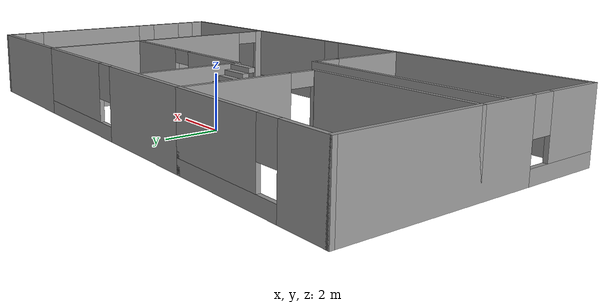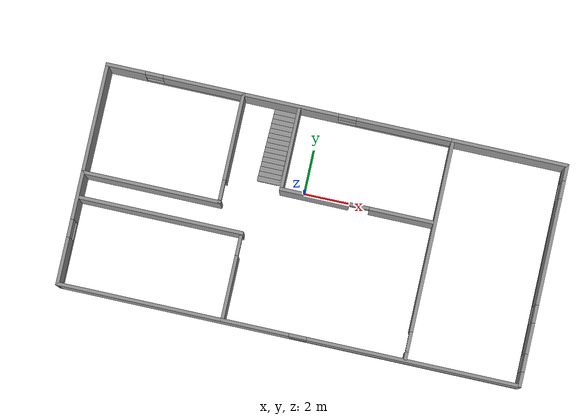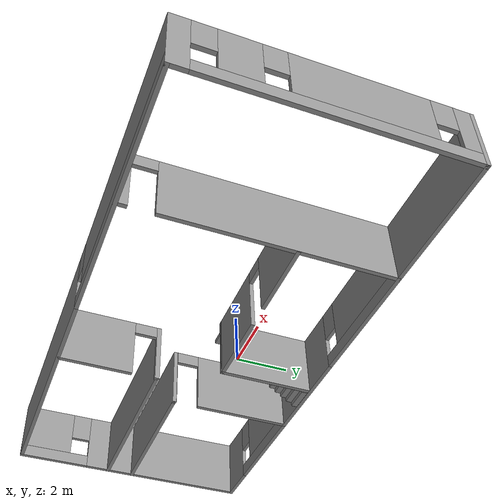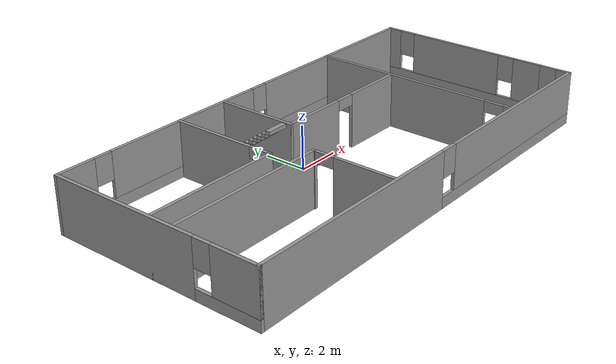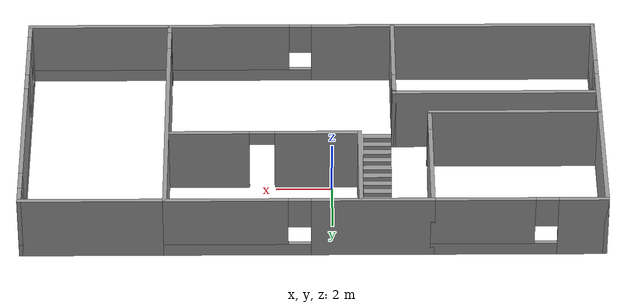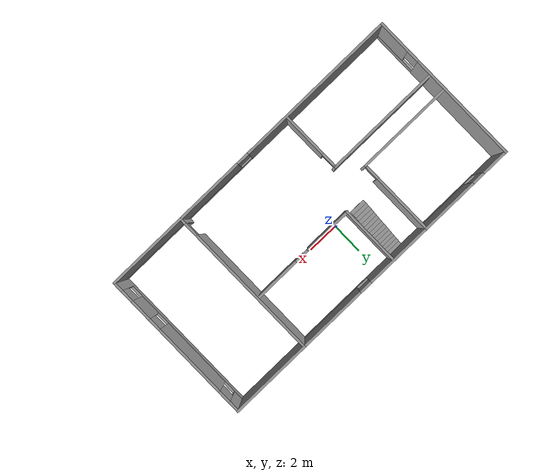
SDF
<?xml version='1.0'?>
<sdf version='1.6'>
  <model name='fourRooms'>
    <pose frame=''>0.699213 -1.42186 0 0 -0 0</pose>
    <link name='Stairs_0'>
      <visual name='Stairs_0_Visual_0'>
        <pose frame=''>-2.29334 4.72292 0.083333 0 -0 0</pose>
        <geometry>
          <box>
            <size>1 0.233333 0.166667</size>
          </box>
        </geometry>
        <material>
          <script>
            <uri>file://media/materials/scripts/gazebo.material</uri>
            <name>Gazebo/Grey</name>
          </script>
          <ambient>1 1 1 1</ambient>
        </material>
        <meta>
          <layer>0</layer>
        </meta>
      </visual>
      <collision name='Stairs_0_Collision_0'>
        <geometry>
          <box>
            <size>1 0.233333 0.166667</size>
          </box>
        </geometry>
        <pose frame=''>-2.29334 4.72292 0.083333 0 -0 0</pose>
      </collision>
      <visual name='Stairs_0_Visual_1'>
        <pose frame=''>-2.29334 4.48959 0.25 0 -0 0</pose>
        <geometry>
          <box>
            <size>1 0.233333 0.166667</size>
          </box>
        </geometry>
        <material>
          <script>
            <uri>file://media/materials/scripts/gazebo.material</uri>
            <name>Gazebo/Grey</name>
          </script>
          <ambient>1 1 1 1</ambient>
        </material>
        <meta>
          <layer>0</layer>
        </meta>
      </visual>
      <collision name='Stairs_0_Collision_1'>
        <geometry>
          <box>
            <size>1 0.233333 0.166667</size>
          </box>
        </geometry>
        <pose frame=''>-2.29334 4.48959 0.25 0 -0 0</pose>
      </collision>
      <visual name='Stairs_0_Visual_2'>
        <pose frame=''>-2.29334 4.25625 0.416667 0 -0 0</pose>
        <geometry>
          <box>
            <size>1 0.233333 0.166667</size>
          </box>
        </geometry>
        <material>
          <script>
            <uri>file://media/materials/scripts/gazebo.material</uri>
            <name>Gazebo/Grey</name>
          </script>
          <ambient>1 1 1 1</ambient>
        </material>
        <meta>
          <layer>0</layer>
        </meta>
      </visual>
      <collision name='Stairs_0_Collision_2'>
        <geometry>
          <box>
            <size>1 0.233333 0.166667</size>
          </box>
        </geometry>
        <pose frame=''>-2.29334 4.25625 0.416667 0 -0 0</pose>
      </collision>
      <visual name='Stairs_0_Visual_3'>
        <pose frame=''>-2.29334 4.02292 0.583333 0 -0 0</pose>
        <geometry>
          <box>
            <size>1 0.233333 0.166667</size>
          </box>
        </geometry>
        <material>
          <script>
            <uri>file://media/materials/scripts/gazebo.material</uri>
            <name>Gazebo/Grey</name>
          </script>
          <ambient>1 1 1 1</ambient>
        </material>
        <meta>
          <layer>0</layer>
        </meta>
      </visual>
      <collision name='Stairs_0_Collision_3'>
        <geometry>
          <box>
            <size>1 0.233333 0.166667</size>
          </box>
        </geometry>
        <pose frame=''>-2.29334 4.02292 0.583333 0 -0 0</pose>
      </collision>
      <visual name='Stairs_0_Visual_4'>
        <pose frame=''>-2.29334 3.78959 0.75 0 -0 0</pose>
        <geometry>
          <box>
            <size>1 0.233333 0.166667</size>
          </box>
        </geometry>
        <material>
          <script>
            <uri>file://media/materials/scripts/gazebo.material</uri>
            <name>Gazebo/Grey</name>
          </script>
          <ambient>1 1 1 1</ambient>
        </material>
        <meta>
          <layer>0</layer>
        </meta>
      </visual>
      <collision name='Stairs_0_Collision_4'>
        <geometry>
          <box>
            <size>1 0.233333 0.166667</size>
          </box>
        </geometry>
        <pose frame=''>-2.29334 3.78959 0.75 0 -0 0</pose>
      </collision>
      <visual name='Stairs_0_Visual_5'>
        <pose frame=''>-2.29334 3.55625 0.916667 0 -0 0</pose>
        <geometry>
          <box>
            <size>1 0.233333 0.166667</size>
          </box>
        </geometry>
        <material>
          <script>
            <uri>file://media/materials/scripts/gazebo.material</uri>
            <name>Gazebo/Grey</name>
          </script>
          <ambient>1 1 1 1</ambient>
        </material>
        <meta>
          <layer>0</layer>
        </meta>
      </visual>
      <collision name='Stairs_0_Collision_5'>
        <geometry>
          <box>
            <size>1 0.233333 0.166667</size>
          </box>
        </geometry>
        <pose frame=''>-2.29334 3.55625 0.916667 0 -0 0</pose>
      </collision>
      <visual name='Stairs_0_Visual_6'>
        <pose frame=''>-2.29334 3.32292 1.08333 0 -0 0</pose>
        <geometry>
          <box>
            <size>1 0.233333 0.166667</size>
          </box>
        </geometry>
        <material>
          <script>
            <uri>file://media/materials/scripts/gazebo.material</uri>
            <name>Gazebo/Grey</name>
          </script>
          <ambient>1 1 1 1</ambient>
        </material>
        <meta>
          <layer>0</layer>
        </meta>
      </visual>
      <collision name='Stairs_0_Collision_6'>
        <geometry>
          <box>
            <size>1 0.233333 0.166667</size>
          </box>
        </geometry>
        <pose frame=''>-2.29334 3.32292 1.08333 0 -0 0</pose>
      </collision>
      <visual name='Stairs_0_Visual_7'>
        <pose frame=''>-2.29334 3.08959 1.25 0 -0 0</pose>
        <geometry>
          <box>
            <size>1 0.233333 0.166667</size>
          </box>
        </geometry>
        <material>
          <script>
            <uri>file://media/materials/scripts/gazebo.material</uri>
            <name>Gazebo/Grey</name>
          </script>
          <ambient>1 1 1 1</ambient>
        </material>
        <meta>
          <layer>0</layer>
        </meta>
      </visual>
      <collision name='Stairs_0_Collision_7'>
        <geometry>
          <box>
            <size>1 0.233333 0.166667</size>
          </box>
        </geometry>
        <pose frame=''>-2.29334 3.08959 1.25 0 -0 0</pose>
      </collision>
      <visual name='Stairs_0_Visual_8'>
        <pose frame=''>-2.29334 2.85625 1.41667 0 -0 0</pose>
        <geometry>
          <box>
            <size>1 0.233333 0.166667</size>
          </box>
        </geometry>
        <material>
          <script>
            <uri>file://media/materials/scripts/gazebo.material</uri>
            <name>Gazebo/Grey</name>
          </script>
          <ambient>1 1 1 1</ambient>
        </material>
        <meta>
          <layer>0</layer>
        </meta>
      </visual>
      <collision name='Stairs_0_Collision_8'>
        <geometry>
          <box>
            <size>1 0.233333 0.166667</size>
          </box>
        </geometry>
        <pose frame=''>-2.29334 2.85625 1.41667 0 -0 0</pose>
      </collision>
      <visual name='Stairs_0_Visual_9'>
        <pose frame=''>-2.29334 2.62292 1.58333 0 -0 0</pose>
        <geometry>
          <box>
            <size>1 0.233333 0.166667</size>
          </box>
        </geometry>
        <material>
          <script>
            <uri>file://media/materials/scripts/gazebo.material</uri>
            <name>Gazebo/Grey</name>
          </script>
          <ambient>1 1 1 1</ambient>
        </material>
        <meta>
          <layer>0</layer>
        </meta>
      </visual>
      <collision name='Stairs_0_Collision_9'>
        <geometry>
          <box>
            <size>1 0.233333 0.166667</size>
          </box>
        </geometry>
        <pose frame=''>-2.29334 2.62292 1.58333 0 -0 0</pose>
      </collision>
      <visual name='Stairs_0_Visual_10'>
        <pose frame=''>-2.29334 2.38959 1.75 0 -0 0</pose>
        <geometry>
          <box>
            <size>1 0.233333 0.166667</size>
          </box>
        </geometry>
        <material>
          <script>
            <uri>file://media/materials/scripts/gazebo.material</uri>
            <name>Gazebo/Grey</name>
          </script>
          <ambient>1 1 1 1</ambient>
        </material>
        <meta>
          <layer>0</layer>
        </meta>
      </visual>
      <collision name='Stairs_0_Collision_10'>
        <geometry>
          <box>
            <size>1 0.233333 0.166667</size>
          </box>
        </geometry>
        <pose frame=''>-2.29334 2.38959 1.75 0 -0 0</pose>
      </collision>
      <visual name='Stairs_0_Visual_11'>
        <pose frame=''>-2.29334 2.15625 1.91667 0 -0 0</pose>
        <geometry>
          <box>
            <size>1 0.233333 0.166667</size>
          </box>
        </geometry>
        <material>
          <script>
            <uri>file://media/materials/scripts/gazebo.material</uri>
            <name>Gazebo/Grey</name>
          </script>
          <ambient>1 1 1 1</ambient>
        </material>
        <meta>
          <layer>0</layer>
        </meta>
      </visual>
      <collision name='Stairs_0_Collision_11'>
        <geometry>
          <box>
            <size>1 0.233333 0.166667</size>
          </box>
        </geometry>
        <pose frame=''>-2.29334 2.15625 1.91667 0 -0 0</pose>
      </collision>
      <visual name='Stairs_0_Visual_12'>
        <pose frame=''>-2.29334 1.92292 2.08333 0 -0 0</pose>
        <geometry>
          <box>
            <size>1 0.233333 0.166667</size>
          </box>
        </geometry>
        <material>
          <script>
            <uri>file://media/materials/scripts/gazebo.material</uri>
            <name>Gazebo/Grey</name>
          </script>
          <ambient>1 1 1 1</ambient>
        </material>
        <meta>
          <layer>0</layer>
        </meta>
      </visual>
      <collision name='Stairs_0_Collision_12'>
        <geometry>
          <box>
            <size>1 0.233333 0.166667</size>
          </box>
        </geometry>
        <pose frame=''>-2.29334 1.92292 2.08333 0 -0 0</pose>
      </collision>
      <visual name='Stairs_0_Visual_13'>
        <pose frame=''>-2.29334 1.68959 2.25 0 -0 0</pose>
        <geometry>
          <box>
            <size>1 0.233333 0.166667</size>
          </box>
        </geometry>
        <material>
          <script>
            <uri>file://media/materials/scripts/gazebo.material</uri>
            <name>Gazebo/Grey</name>
          </script>
          <ambient>1 1 1 1</ambient>
        </material>
        <meta>
          <layer>0</layer>
        </meta>
      </visual>
      <collision name='Stairs_0_Collision_13'>
        <geometry>
          <box>
            <size>1 0.233333 0.166667</size>
          </box>
        </geometry>
        <pose frame=''>-2.29334 1.68959 2.25 0 -0 0</pose>
      </collision>
      <visual name='Stairs_0_Visual_14'>
        <pose frame=''>-2.29334 1.45625 2.41667 0 -0 0</pose>
        <geometry>
          <box>
            <size>1 0.233333 0.166667</size>
          </box>
        </geometry>
        <material>
          <script>
            <uri>file://media/materials/scripts/gazebo.material</uri>
            <name>Gazebo/Grey</name>
          </script>
          <ambient>1 1 1 1</ambient>
        </material>
        <meta>
          <layer>0</layer>
        </meta>
      </visual>
      <collision name='Stairs_0_Collision_14'>
        <geometry>
          <box>
            <size>1 0.233333 0.166667</size>
          </box>
        </geometry>
        <pose frame=''>-2.29334 1.45625 2.41667 0 -0 0</pose>
      </collision>
    </link>
    <link name='Wall_20'>
      <pose frame=''>-10.3 -0 0 0 -0 -1.5708</pose>
      <visual name='Wall_20_Visual_0'>
        <pose frame=''>-1.47837 0 1.25 0 -0 0</pose>
        <geometry>
          <box>
            <size>7.04326 0.15 2.5</size>
          </box>
        </geometry>
        <material>
          <script>
            <uri>file://media/materials/scripts/gazebo.material</uri>
            <name>Gazebo/Grey</name>
          </script>
          <ambient>1 1 1 1</ambient>
        </material>
        <meta>
          <layer>0</layer>
        </meta>
      </visual>
      <collision name='Wall_20_Collision_0'>
        <geometry>
          <box>
            <size>7.04326 0.15 2.5</size>
          </box>
        </geometry>
        <pose frame=''>-1.47837 0 1.25 0 -0 0</pose>
      </collision>
      <visual name='Wall_20_Visual_1'>
        <pose frame=''>3.52163 0 0.25 0 -0 0</pose>
        <geometry>
          <box>
            <size>2.95675 0.15 0.5</size>
          </box>
        </geometry>
        <material>
          <script>
            <uri>file://media/materials/scripts/gazebo.material</uri>
            <name>Gazebo/Grey</name>
          </script>
          <ambient>1 1 1 1</ambient>
        </material>
        <meta>
          <layer>0</layer>
        </meta>
      </visual>
      <collision name='Wall_20_Collision_1'>
        <geometry>
          <box>
            <size>2.95675 0.15 0.5</size>
          </box>
        </geometry>
        <pose frame=''>3.52163 0 0.25 0 -0 0</pose>
      </collision>
      <visual name='Wall_20_Visual_2'>
        <pose frame=''>3.92163 0 1.5 0 -0 0</pose>
        <geometry>
          <box>
            <size>2.15674 0.15 2</size>
          </box>
        </geometry>
        <material>
          <script>
            <uri>file://media/materials/scripts/gazebo.material</uri>
            <name>Gazebo/Grey</name>
          </script>
          <ambient>1 1 1 1</ambient>
        </material>
        <meta>
          <layer>0</layer>
        </meta>
      </visual>
      <collision name='Wall_20_Collision_2'>
        <geometry>
          <box>
            <size>2.15674 0.15 2</size>
          </box>
        </geometry>
        <pose frame=''>3.92163 0 1.5 0 -0 0</pose>
      </collision>
      <visual name='Wall_20_Visual_3'>
        <pose frame=''>2.44326 0 1.9 0 -0 0</pose>
        <geometry>
          <box>
            <size>0.8 0.15 1.2</size>
          </box>
        </geometry>
        <material>
          <script>
            <uri>file://media/materials/scripts/gazebo.material</uri>
            <name>Gazebo/Grey</name>
          </script>
          <ambient>1 1 1 1</ambient>
        </material>
        <meta>
          <layer>0</layer>
        </meta>
      </visual>
      <collision name='Wall_20_Collision_3'>
        <geometry>
          <box>
            <size>0.8 0.15 1.2</size>
          </box>
        </geometry>
        <pose frame=''>2.44326 0 1.9 0 -0 0</pose>
      </collision>
    </link>
    <link name='Wall_21'>
      <pose frame=''>0 -4.925 0 0 -0 0</pose>
      <visual name='Wall_21_Visual_0'>
        <pose frame=''>-5.17756 0 1.25 0 -0 0</pose>
        <geometry>
          <box>
            <size>10.3949 0.15 2.5</size>
          </box>
        </geometry>
        <material>
          <script>
            <uri>file://media/materials/scripts/gazebo.material</uri>
            <name>Gazebo/Grey</name>
          </script>
          <ambient>1 1 1 1</ambient>
        </material>
        <meta>
          <layer>0</layer>
        </meta>
      </visual>
      <collision name='Wall_21_Collision_0'>
        <geometry>
          <box>
            <size>10.3949 0.15 2.5</size>
          </box>
        </geometry>
        <pose frame=''>-5.17756 0 1.25 0 -0 0</pose>
      </collision>
      <visual name='Wall_21_Visual_1'>
        <pose frame=''>5.19744 0 0.25 0 -0 0</pose>
        <geometry>
          <box>
            <size>10.3551 0.15 0.5</size>
          </box>
        </geometry>
        <material>
          <script>
            <uri>file://media/materials/scripts/gazebo.material</uri>
            <name>Gazebo/Grey</name>
          </script>
          <ambient>1 1 1 1</ambient>
        </material>
        <meta>
          <layer>0</layer>
        </meta>
      </visual>
      <collision name='Wall_21_Collision_1'>
        <geometry>
          <box>
            <size>10.3551 0.15 0.5</size>
          </box>
        </geometry>
        <pose frame=''>5.19744 0 0.25 0 -0 0</pose>
      </collision>
      <visual name='Wall_21_Visual_2'>
        <pose frame=''>5.59744 0 1.5 0 -0 0</pose>
        <geometry>
          <box>
            <size>9.55512 0.15 2</size>
          </box>
        </geometry>
        <material>
          <script>
            <uri>file://media/materials/scripts/gazebo.material</uri>
            <name>Gazebo/Grey</name>
          </script>
          <ambient>1 1 1 1</ambient>
        </material>
        <meta>
          <layer>0</layer>
        </meta>
      </visual>
      <collision name='Wall_21_Collision_2'>
        <geometry>
          <box>
            <size>9.55512 0.15 2</size>
          </box>
        </geometry>
        <pose frame=''>5.59744 0 1.5 0 -0 0</pose>
      </collision>
      <visual name='Wall_21_Visual_3'>
        <pose frame=''>0.41988 0 1.9 0 -0 0</pose>
        <geometry>
          <box>
            <size>0.8 0.15 1.2</size>
          </box>
        </geometry>
        <material>
          <script>
            <uri>file://media/materials/scripts/gazebo.material</uri>
            <name>Gazebo/Grey</name>
          </script>
          <ambient>1 1 1 1</ambient>
        </material>
        <meta>
          <layer>0</layer>
        </meta>
      </visual>
      <collision name='Wall_21_Collision_3'>
        <geometry>
          <box>
            <size>0.8 0.15 1.2</size>
          </box>
        </geometry>
        <pose frame=''>0.41988 0 1.9 0 -0 0</pose>
      </collision>
    </link>
    <link name='Wall_22'>
      <pose frame=''>10.3 -0 0 0 -0 1.5708</pose>
      <visual name='Wall_22_Visual_0'>
        <pose frame=''>-4.65313 0 1.25 0 -0 0</pose>
        <geometry>
          <box>
            <size>0.693734 0.15 2.5</size>
          </box>
        </geometry>
        <material>
          <script>
            <uri>file://media/materials/scripts/gazebo.material</uri>
            <name>Gazebo/Grey</name>
          </script>
          <ambient>1 1 1 1</ambient>
        </material>
        <meta>
          <layer>0</layer>
        </meta>
      </visual>
      <collision name='Wall_22_Collision_0'>
        <geometry>
          <box>
            <size>0.693734 0.15 2.5</size>
          </box>
        </geometry>
        <pose frame=''>-4.65313 0 1.25 0 -0 0</pose>
      </collision>
      <visual name='Wall_22_Visual_1'>
        <pose frame=''>0.346867 0 0.25 0 -0 0</pose>
        <geometry>
          <box>
            <size>9.30627 0.15 0.5</size>
          </box>
        </geometry>
        <material>
          <script>
            <uri>file://media/materials/scripts/gazebo.material</uri>
            <name>Gazebo/Grey</name>
          </script>
          <ambient>1 1 1 1</ambient>
        </material>
        <meta>
          <layer>0</layer>
        </meta>
      </visual>
      <collision name='Wall_22_Collision_1'>
        <geometry>
          <box>
            <size>9.30627 0.15 0.5</size>
          </box>
        </geometry>
        <pose frame=''>0.346867 0 0.25 0 -0 0</pose>
      </collision>
      <visual name='Wall_22_Visual_2'>
        <pose frame=''>-2.81566 0 1.5 0 -0 0</pose>
        <geometry>
          <box>
            <size>1.38122 0.15 2</size>
          </box>
        </geometry>
        <material>
          <script>
            <uri>file://media/materials/scripts/gazebo.material</uri>
            <name>Gazebo/Grey</name>
          </script>
          <ambient>1 1 1 1</ambient>
        </material>
        <meta>
          <layer>0</layer>
        </meta>
      </visual>
      <collision name='Wall_22_Collision_2'>
        <geometry>
          <box>
            <size>1.38122 0.15 2</size>
          </box>
        </geometry>
        <pose frame=''>-2.81566 0 1.5 0 -0 0</pose>
      </collision>
      <visual name='Wall_22_Visual_3'>
        <pose frame=''>1.05467 0 1.5 0 -0 0</pose>
        <geometry>
          <box>
            <size>4.75944 0.15 2</size>
          </box>
        </geometry>
        <material>
          <script>
            <uri>file://media/materials/scripts/gazebo.material</uri>
            <name>Gazebo/Grey</name>
          </script>
          <ambient>1 1 1 1</ambient>
        </material>
        <meta>
          <layer>0</layer>
        </meta>
      </visual>
      <collision name='Wall_22_Collision_3'>
        <geometry>
          <box>
            <size>4.75944 0.15 2</size>
          </box>
        </geometry>
        <pose frame=''>1.05467 0 1.5 0 -0 0</pose>
      </collision>
      <visual name='Wall_22_Visual_4'>
        <pose frame=''>4.6172 0 1.5 0 -0 0</pose>
        <geometry>
          <box>
            <size>0.765608 0.15 2</size>
          </box>
        </geometry>
        <material>
          <script>
            <uri>file://media/materials/scripts/gazebo.material</uri>
            <name>Gazebo/Grey</name>
          </script>
          <ambient>1 1 1 1</ambient>
        </material>
        <meta>
          <layer>0</layer>
        </meta>
      </visual>
      <collision name='Wall_22_Collision_4'>
        <geometry>
          <box>
            <size>0.765608 0.15 2</size>
          </box>
        </geometry>
        <pose frame=''>4.6172 0 1.5 0 -0 0</pose>
      </collision>
      <visual name='Wall_22_Visual_5'>
        <pose frame=''>-3.90627 0 1.9 0 -0 0</pose>
        <geometry>
          <box>
            <size>0.8 0.15 1.2</size>
          </box>
        </geometry>
        <material>
          <script>
            <uri>file://media/materials/scripts/gazebo.material</uri>
            <name>Gazebo/Grey</name>
          </script>
          <ambient>1 1 1 1</ambient>
        </material>
        <meta>
          <layer>0</layer>
        </meta>
      </visual>
      <collision name='Wall_22_Collision_5'>
        <geometry>
          <box>
            <size>0.8 0.15 1.2</size>
          </box>
        </geometry>
        <pose frame=''>-3.90627 0 1.9 0 -0 0</pose>
      </collision>
      <visual name='Wall_22_Visual_6'>
        <pose frame=''>-1.72505 0 1.9 0 -0 0</pose>
        <geometry>
          <box>
            <size>0.8 0.15 1.2</size>
          </box>
        </geometry>
        <material>
          <script>
            <uri>file://media/materials/scripts/gazebo.material</uri>
            <name>Gazebo/Grey</name>
          </script>
          <ambient>1 1 1 1</ambient>
        </material>
        <meta>
          <layer>0</layer>
        </meta>
      </visual>
      <collision name='Wall_22_Collision_6'>
        <geometry>
          <box>
            <size>0.8 0.15 1.2</size>
          </box>
        </geometry>
        <pose frame=''>-1.72505 0 1.9 0 -0 0</pose>
      </collision>
      <visual name='Wall_22_Visual_7'>
        <pose frame=''>3.83439 0 1.9 0 -0 0</pose>
        <geometry>
          <box>
            <size>0.8 0.15 1.2</size>
          </box>
        </geometry>
        <material>
          <script>
            <uri>file://media/materials/scripts/gazebo.material</uri>
            <name>Gazebo/Grey</name>
          </script>
          <ambient>1 1 1 1</ambient>
        </material>
        <meta>
          <layer>0</layer>
        </meta>
      </visual>
      <collision name='Wall_22_Collision_7'>
        <geometry>
          <box>
            <size>0.8 0.15 1.2</size>
          </box>
        </geometry>
        <pose frame=''>3.83439 0 1.9 0 -0 0</pose>
      </collision>
    </link>
    <link name='Wall_23'>
      <collision name='Wall_23_Collision'>
        <geometry>
          <box>
            <size>5.25 0.15 2.5</size>
          </box>
        </geometry>
        <pose frame=''>0 0 1.25 0 -0 0</pose>
      </collision>
      <visual name='Wall_23_Visual'>
        <pose frame=''>0 0 1.25 0 -0 0</pose>
        <geometry>
          <box>
            <size>5.25 0.15 2.5</size>
          </box>
        </geometry>
        <material>
          <script>
            <uri>file://media/materials/scripts/gazebo.material</uri>
            <name>Gazebo/Grey</name>
          </script>
          <ambient>1 1 1 1</ambient>
        </material>
        <meta>
          <layer>0</layer>
        </meta>
      </visual>
      <pose frame=''>7.75 4.925 0 0 -0 3.14159</pose>
    </link>
    <link name='Wall_24'>
      <pose frame=''>5.2 -0 0 0 -0 -1.5708</pose>
      <visual name='Wall_24_Visual_0'>
        <pose frame=''>-0.678766 0 1.25 0 -0 0</pose>
        <geometry>
          <box>
            <size>8.64247 0.15 2.5</size>
          </box>
        </geometry>
        <material>
          <script>
            <uri>file://media/materials/scripts/gazebo.material</uri>
            <name>Gazebo/Grey</name>
          </script>
          <ambient>1 1 1 1</ambient>
        </material>
        <meta>
          <layer>0</layer>
        </meta>
      </visual>
      <collision name='Wall_24_Collision_0'>
        <geometry>
          <box>
            <size>8.64247 0.15 2.5</size>
          </box>
        </geometry>
        <pose frame=''>-0.678766 0 1.25 0 -0 0</pose>
      </collision>
      <visual name='Wall_24_Visual_1'>
        <pose frame=''>4.77123 0 1.25 0 -0 0</pose>
        <geometry>
          <box>
            <size>0.457533 0.15 2.5</size>
          </box>
        </geometry>
        <material>
          <script>
            <uri>file://media/materials/scripts/gazebo.material</uri>
            <name>Gazebo/Grey</name>
          </script>
          <ambient>1 1 1 1</ambient>
        </material>
        <meta>
          <layer>0</layer>
        </meta>
      </visual>
      <collision name='Wall_24_Collision_1'>
        <geometry>
          <box>
            <size>0.457533 0.15 2.5</size>
          </box>
        </geometry>
        <pose frame=''>4.77123 0 1.25 0 -0 0</pose>
      </collision>
      <visual name='Wall_24_Visual_2'>
        <pose frame=''>4.09247 0 2.25 0 -0 0</pose>
        <geometry>
          <box>
            <size>0.9 0.15 0.5</size>
          </box>
        </geometry>
        <material>
          <script>
            <uri>file://media/materials/scripts/gazebo.material</uri>
            <name>Gazebo/Grey</name>
          </script>
          <ambient>1 1 1 1</ambient>
        </material>
        <meta>
          <layer>0</layer>
        </meta>
      </visual>
      <collision name='Wall_24_Collision_2'>
        <geometry>
          <box>
            <size>0.9 0.15 0.5</size>
          </box>
        </geometry>
        <pose frame=''>4.09247 0 2.25 0 -0 0</pose>
      </collision>
    </link>
    <link name='Wall_26'>
      <pose frame=''>-7.25 4.925 0 0 -0 0</pose>
      <visual name='Wall_26_Visual_0'>
        <pose frame=''>-2.23679 0 1.25 0 -0 0</pose>
        <geometry>
          <box>
            <size>1.77642 0.15 2.5</size>
          </box>
        </geometry>
        <material>
          <script>
            <uri>file://media/materials/scripts/gazebo.material</uri>
            <name>Gazebo/Grey</name>
          </script>
          <ambient>1 1 1 1</ambient>
        </material>
        <meta>
          <layer>0</layer>
        </meta>
      </visual>
      <collision name='Wall_26_Collision_0'>
        <geometry>
          <box>
            <size>1.77642 0.15 2.5</size>
          </box>
        </geometry>
        <pose frame=''>-2.23679 0 1.25 0 -0 0</pose>
      </collision>
      <visual name='Wall_26_Visual_1'>
        <pose frame=''>0.888208 0 0.25 0 -0 0</pose>
        <geometry>
          <box>
            <size>4.47358 0.15 0.5</size>
          </box>
        </geometry>
        <material>
          <script>
            <uri>file://media/materials/scripts/gazebo.material</uri>
            <name>Gazebo/Grey</name>
          </script>
          <ambient>1 1 1 1</ambient>
        </material>
        <meta>
          <layer>0</layer>
        </meta>
      </visual>
      <collision name='Wall_26_Collision_1'>
        <geometry>
          <box>
            <size>4.47358 0.15 0.5</size>
          </box>
        </geometry>
        <pose frame=''>0.888208 0 0.25 0 -0 0</pose>
      </collision>
      <visual name='Wall_26_Visual_2'>
        <pose frame=''>1.28821 0 1.5 0 -0 0</pose>
        <geometry>
          <box>
            <size>3.67358 0.15 2</size>
          </box>
        </geometry>
        <material>
          <script>
            <uri>file://media/materials/scripts/gazebo.material</uri>
            <name>Gazebo/Grey</name>
          </script>
          <ambient>1 1 1 1</ambient>
        </material>
        <meta>
          <layer>0</layer>
        </meta>
      </visual>
      <collision name='Wall_26_Collision_2'>
        <geometry>
          <box>
            <size>3.67358 0.15 2</size>
          </box>
        </geometry>
        <pose frame=''>1.28821 0 1.5 0 -0 0</pose>
      </collision>
      <visual name='Wall_26_Visual_3'>
        <pose frame=''>-0.948584 0 1.9 0 -0 0</pose>
        <geometry>
          <box>
            <size>0.8 0.15 1.2</size>
          </box>
        </geometry>
        <material>
          <script>
            <uri>file://media/materials/scripts/gazebo.material</uri>
            <name>Gazebo/Grey</name>
          </script>
          <ambient>1 1 1 1</ambient>
        </material>
        <meta>
          <layer>0</layer>
        </meta>
      </visual>
      <collision name='Wall_26_Collision_3'>
        <geometry>
          <box>
            <size>0.8 0.15 1.2</size>
          </box>
        </geometry>
        <pose frame=''>-0.948584 0 1.9 0 -0 0</pose>
      </collision>
    </link>
    <link name='Wall_27'>
      <pose frame=''>-4.2 2.5 0 0 -0 -1.5708</pose>
      <visual name='Wall_27_Visual_0'>
        <pose frame=''>-0.532884 0 1.25 0 -0 0</pose>
        <geometry>
          <box>
            <size>3.93423 0.15 2.5</size>
          </box>
        </geometry>
        <material>
          <script>
            <uri>file://media/materials/scripts/gazebo.material</uri>
            <name>Gazebo/Grey</name>
          </script>
          <ambient>1 1 1 1</ambient>
        </material>
        <meta>
          <layer>0</layer>
        </meta>
      </visual>
      <collision name='Wall_27_Collision_0'>
        <geometry>
          <box>
            <size>3.93423 0.15 2.5</size>
          </box>
        </geometry>
        <pose frame=''>-0.532884 0 1.25 0 -0 0</pose>
      </collision>
      <visual name='Wall_27_Visual_1'>
        <pose frame=''>2.41712 0 1.25 0 -0 0</pose>
        <geometry>
          <box>
            <size>0.165768 0.15 2.5</size>
          </box>
        </geometry>
        <material>
          <script>
            <uri>file://media/materials/scripts/gazebo.material</uri>
            <name>Gazebo/Grey</name>
          </script>
          <ambient>1 1 1 1</ambient>
        </material>
        <meta>
          <layer>0</layer>
        </meta>
      </visual>
      <collision name='Wall_27_Collision_1'>
        <geometry>
          <box>
            <size>0.165768 0.15 2.5</size>
          </box>
        </geometry>
        <pose frame=''>2.41712 0 1.25 0 -0 0</pose>
      </collision>
      <visual name='Wall_27_Visual_2'>
        <pose frame=''>1.88423 0 2.25 0 -0 0</pose>
        <geometry>
          <box>
            <size>0.9 0.15 0.5</size>
          </box>
        </geometry>
        <material>
          <script>
            <uri>file://media/materials/scripts/gazebo.material</uri>
            <name>Gazebo/Grey</name>
          </script>
          <ambient>1 1 1 1</ambient>
        </material>
        <meta>
          <layer>0</layer>
        </meta>
      </visual>
      <collision name='Wall_27_Collision_2'>
        <geometry>
          <box>
            <size>0.9 0.15 0.5</size>
          </box>
        </geometry>
        <pose frame=''>1.88423 0 2.25 0 -0 0</pose>
      </collision>
    </link>
    <link name='Wall_28'>
      <collision name='Wall_28_Collision'>
        <geometry>
          <box>
            <size>6.25 0.15 2.5</size>
          </box>
        </geometry>
        <pose frame=''>0 0 1.25 0 -0 0</pose>
      </collision>
      <visual name='Wall_28_Visual'>
        <pose frame=''>0 0 1.25 0 -0 0</pose>
        <geometry>
          <box>
            <size>6.25 0.15 2.5</size>
          </box>
        </geometry>
        <material>
          <script>
            <uri>file://media/materials/scripts/gazebo.material</uri>
            <name>Gazebo/Grey</name>
          </script>
          <ambient>1 1 1 1</ambient>
        </material>
        <meta>
          <layer>0</layer>
        </meta>
      </visual>
      <pose frame=''>-7.25 0.075 0 0 -0 3.14159</pose>
    </link>
    <link name='Wall_31'>
      <collision name='Wall_31_Collision'>
        <geometry>
          <box>
            <size>7.5 0.15 2.5</size>
          </box>
        </geometry>
        <pose frame=''>0 0 1.25 0 -0 0</pose>
      </collision>
      <visual name='Wall_31_Visual'>
        <pose frame=''>0 0 1.25 0 -0 0</pose>
        <geometry>
          <box>
            <size>7.5 0.15 2.5</size>
          </box>
        </geometry>
        <material>
          <script>
            <uri>file://media/materials/scripts/gazebo.material</uri>
            <name>Gazebo/Grey</name>
          </script>
          <ambient>1 1 1 1</ambient>
        </material>
        <meta>
          <layer>0</layer>
        </meta>
      </visual>
      <pose frame=''>-6.625 -1.03344 0 0 -0 0</pose>
    </link>
    <link name='Wall_32'>
      <pose frame=''>-2.95 -2.95845 0 0 -0 -1.5708</pose>
      <visual name='Wall_32_Visual_0'>
        <pose frame=''>-1.9082 0 1.25 0 -0 0</pose>
        <geometry>
          <box>
            <size>0.183604 0.15 2.5</size>
          </box>
        </geometry>
        <material>
          <script>
            <uri>file://media/materials/scripts/gazebo.material</uri>
            <name>Gazebo/Grey</name>
          </script>
          <ambient>1 1 1 1</ambient>
        </material>
        <meta>
          <layer>0</layer>
        </meta>
      </visual>
      <collision name='Wall_32_Collision_0'>
        <geometry>
          <box>
            <size>0.183604 0.15 2.5</size>
          </box>
        </geometry>
        <pose frame=''>-1.9082 0 1.25 0 -0 0</pose>
      </collision>
      <visual name='Wall_32_Visual_1'>
        <pose frame=''>0.541802 0 1.25 0 -0 0</pose>
        <geometry>
          <box>
            <size>2.9164 0.15 2.5</size>
          </box>
        </geometry>
        <material>
          <script>
            <uri>file://media/materials/scripts/gazebo.material</uri>
            <name>Gazebo/Grey</name>
          </script>
          <ambient>1 1 1 1</ambient>
        </material>
        <meta>
          <layer>0</layer>
        </meta>
      </visual>
      <collision name='Wall_32_Collision_1'>
        <geometry>
          <box>
            <size>2.9164 0.15 2.5</size>
          </box>
        </geometry>
        <pose frame=''>0.541802 0 1.25 0 -0 0</pose>
      </collision>
      <visual name='Wall_32_Visual_2'>
        <pose frame=''>-1.3664 0 2.25 0 -0 0</pose>
        <geometry>
          <box>
            <size>0.9 0.15 0.5</size>
          </box>
        </geometry>
        <material>
          <script>
            <uri>file://media/materials/scripts/gazebo.material</uri>
            <name>Gazebo/Grey</name>
          </script>
          <ambient>1 1 1 1</ambient>
        </material>
        <meta>
          <layer>0</layer>
        </meta>
      </visual>
      <collision name='Wall_32_Collision_2'>
        <geometry>
          <box>
            <size>0.9 0.15 0.5</size>
          </box>
        </geometry>
        <pose frame=''>-1.3664 0 2.25 0 -0 0</pose>
      </collision>
    </link>
    <link name='Wall_34'>
      <pose frame=''>0.5 4.925 0 0 -0 0</pose>
      <visual name='Wall_34_Visual_0'>
        <pose frame=''>-2.60096 0 1.25 0 -0 0</pose>
        <geometry>
          <box>
            <size>4.34808 0.15 2.5</size>
          </box>
        </geometry>
        <material>
          <script>
            <uri>file://media/materials/scripts/gazebo.material</uri>
            <name>Gazebo/Grey</name>
          </script>
          <ambient>1 1 1 1</ambient>
        </material>
        <meta>
          <layer>0</layer>
        </meta>
      </visual>
      <collision name='Wall_34_Collision_0'>
        <geometry>
          <box>
            <size>4.34808 0.15 2.5</size>
          </box>
        </geometry>
        <pose frame=''>-2.60096 0 1.25 0 -0 0</pose>
      </collision>
      <visual name='Wall_34_Visual_1'>
        <pose frame=''>2.17404 0 0.25 0 -0 0</pose>
        <geometry>
          <box>
            <size>5.20192 0.15 0.5</size>
          </box>
        </geometry>
        <material>
          <script>
            <uri>file://media/materials/scripts/gazebo.material</uri>
            <name>Gazebo/Grey</name>
          </script>
          <ambient>1 1 1 1</ambient>
        </material>
        <meta>
          <layer>0</layer>
        </meta>
      </visual>
      <collision name='Wall_34_Collision_1'>
        <geometry>
          <box>
            <size>5.20192 0.15 0.5</size>
          </box>
        </geometry>
        <pose frame=''>2.17404 0 0.25 0 -0 0</pose>
      </collision>
      <visual name='Wall_34_Visual_2'>
        <pose frame=''>2.57404 0 1.5 0 -0 0</pose>
        <geometry>
          <box>
            <size>4.40192 0.15 2</size>
          </box>
        </geometry>
        <material>
          <script>
            <uri>file://media/materials/scripts/gazebo.material</uri>
            <name>Gazebo/Grey</name>
          </script>
          <ambient>1 1 1 1</ambient>
        </material>
        <meta>
          <layer>0</layer>
        </meta>
      </visual>
      <collision name='Wall_34_Collision_2'>
        <geometry>
          <box>
            <size>4.40192 0.15 2</size>
          </box>
        </geometry>
        <pose frame=''>2.57404 0 1.5 0 -0 0</pose>
      </collision>
      <visual name='Wall_34_Visual_3'>
        <pose frame=''>-0.026919 0 1.9 0 -0 0</pose>
        <geometry>
          <box>
            <size>0.8 0.15 1.2</size>
          </box>
        </geometry>
        <material>
          <script>
            <uri>file://media/materials/scripts/gazebo.material</uri>
            <name>Gazebo/Grey</name>
          </script>
          <ambient>1 1 1 1</ambient>
        </material>
        <meta>
          <layer>0</layer>
        </meta>
      </visual>
      <collision name='Wall_34_Collision_3'>
        <geometry>
          <box>
            <size>0.8 0.15 1.2</size>
          </box>
        </geometry>
        <pose frame=''>-0.026919 0 1.9 0 -0 0</pose>
      </collision>
    </link>
    <link name='Wall_36'>
      <collision name='Wall_36_Collision'>
        <geometry>
          <box>
            <size>3.75 0.15 2.5</size>
          </box>
        </geometry>
        <pose frame=''>0 0 1.25 0 -0 0</pose>
      </collision>
      <visual name='Wall_36_Visual'>
        <pose frame=''>0 0 1.25 0 -0 0</pose>
        <geometry>
          <box>
            <size>3.75 0.15 2.5</size>
          </box>
        </geometry>
        <material>
          <script>
            <uri>file://media/materials/scripts/gazebo.material</uri>
            <name>Gazebo/Grey</name>
          </script>
          <ambient>1 1 1 1</ambient>
        </material>
        <meta>
          <layer>0</layer>
        </meta>
      </visual>
      <pose frame=''>-1.68154 3.0186 0 0 -0 -1.5708</pose>
    </link>
    <link name='Wall_37'>
      <pose frame=''>1.74346 1.2186 0 0 -0 0</pose>
      <visual name='Wall_37_Visual_0'>
        <pose frame=''>-1.94519 0 1.25 0 -0 0</pose>
        <geometry>
          <box>
            <size>3.10963 0.15 2.5</size>
          </box>
        </geometry>
        <material>
          <script>
            <uri>file://media/materials/scripts/gazebo.material</uri>
            <name>Gazebo/Grey</name>
          </script>
          <ambient>1 1 1 1</ambient>
        </material>
        <meta>
          <layer>0</layer>
        </meta>
      </visual>
      <collision name='Wall_37_Collision_0'>
        <geometry>
          <box>
            <size>3.10963 0.15 2.5</size>
          </box>
        </geometry>
        <pose frame=''>-1.94519 0 1.25 0 -0 0</pose>
      </collision>
      <visual name='Wall_37_Visual_1'>
        <pose frame=''>2.00481 0 1.25 0 -0 0</pose>
        <geometry>
          <box>
            <size>2.99037 0.15 2.5</size>
          </box>
        </geometry>
        <material>
          <script>
            <uri>file://media/materials/scripts/gazebo.material</uri>
            <name>Gazebo/Grey</name>
          </script>
          <ambient>1 1 1 1</ambient>
        </material>
        <meta>
          <layer>0</layer>
        </meta>
      </visual>
      <collision name='Wall_37_Collision_1'>
        <geometry>
          <box>
            <size>2.99037 0.15 2.5</size>
          </box>
        </geometry>
        <pose frame=''>2.00481 0 1.25 0 -0 0</pose>
      </collision>
      <visual name='Wall_37_Visual_2'>
        <pose frame=''>0.059626 0 2.25 0 -0 0</pose>
        <geometry>
          <box>
            <size>0.9 0.15 0.5</size>
          </box>
        </geometry>
        <material>
          <script>
            <uri>file://media/materials/scripts/gazebo.material</uri>
            <name>Gazebo/Grey</name>
          </script>
          <ambient>1 1 1 1</ambient>
        </material>
        <meta>
          <layer>0</layer>
        </meta>
      </visual>
      <collision name='Wall_37_Collision_2'>
        <geometry>
          <box>
            <size>0.9 0.15 0.5</size>
          </box>
        </geometry>
        <pose frame=''>0.059626 0 2.25 0 -0 0</pose>
      </collision>
    </link>
    <static>1</static>
  </model>
</sdf>
